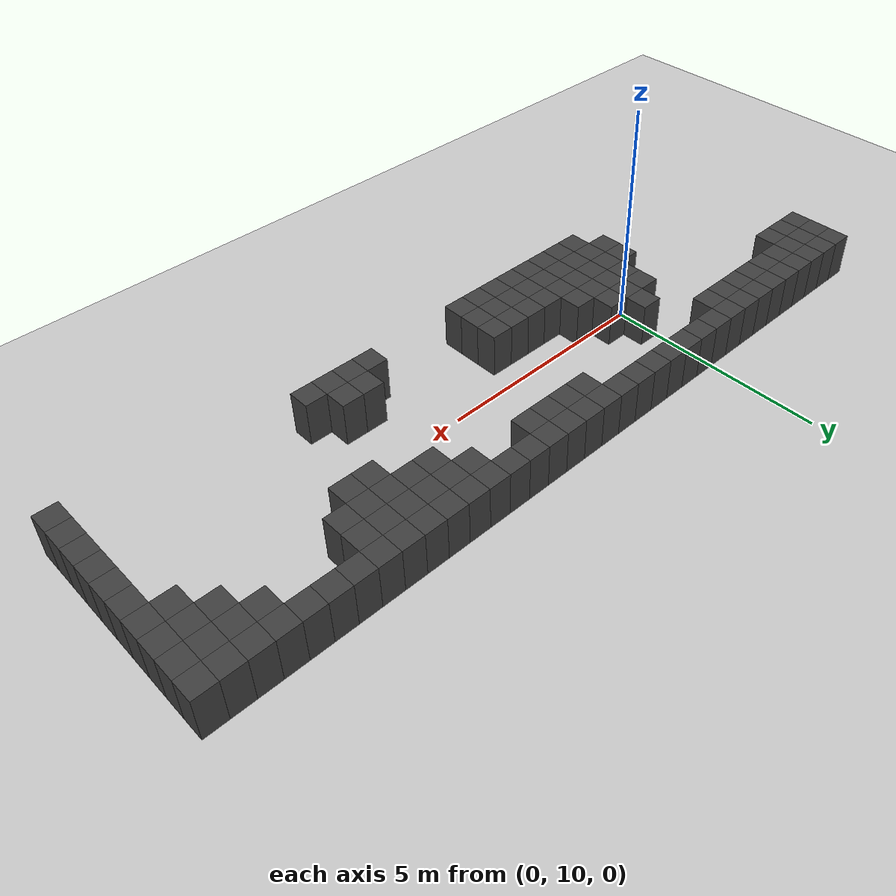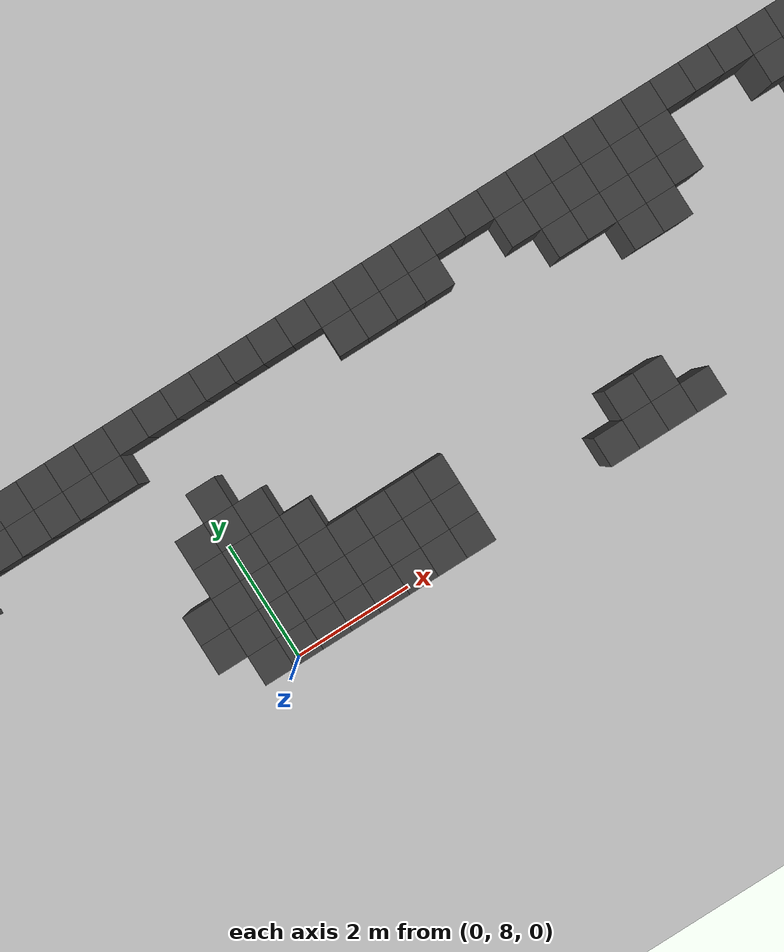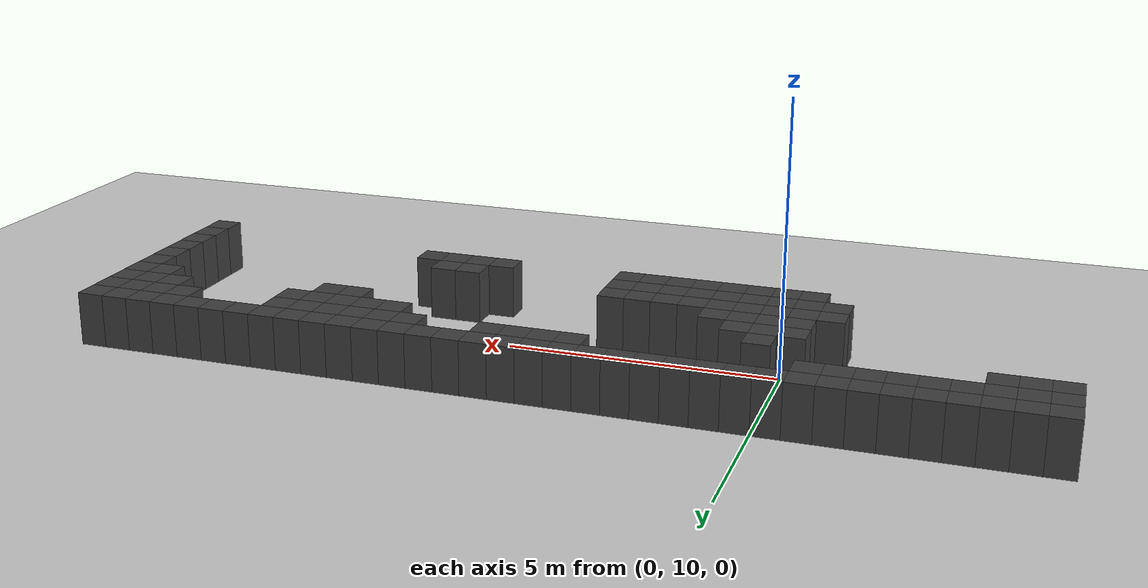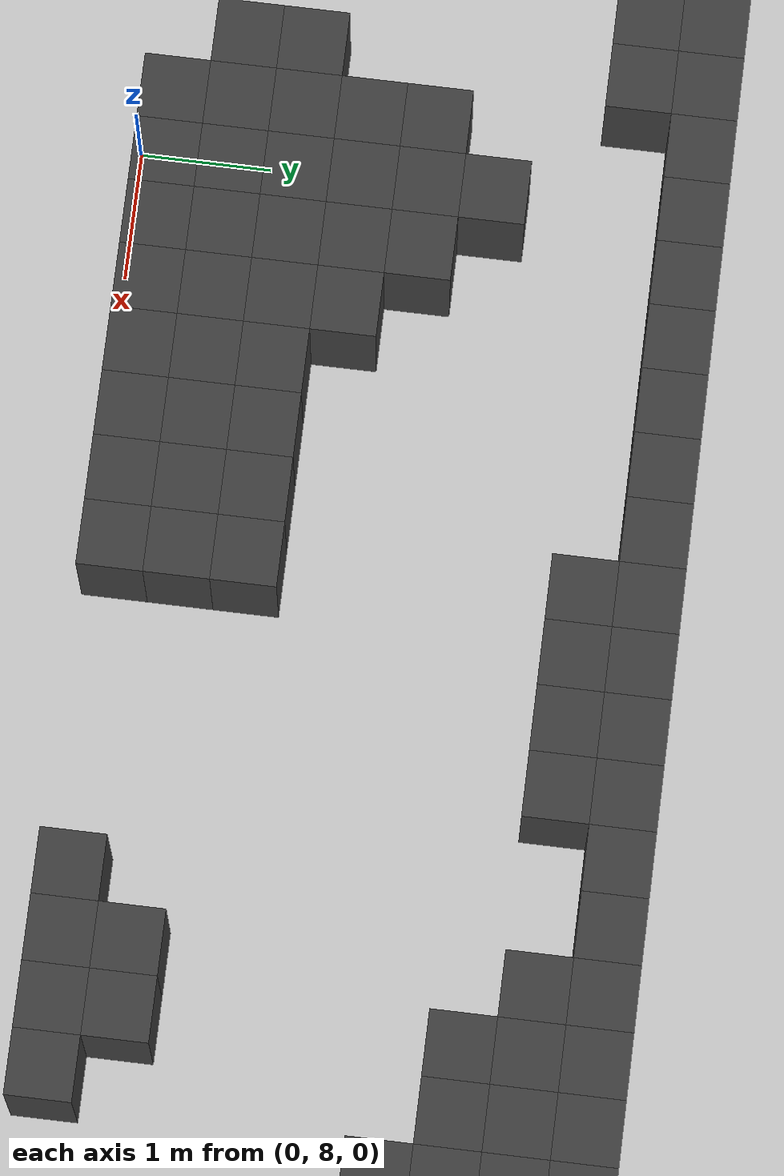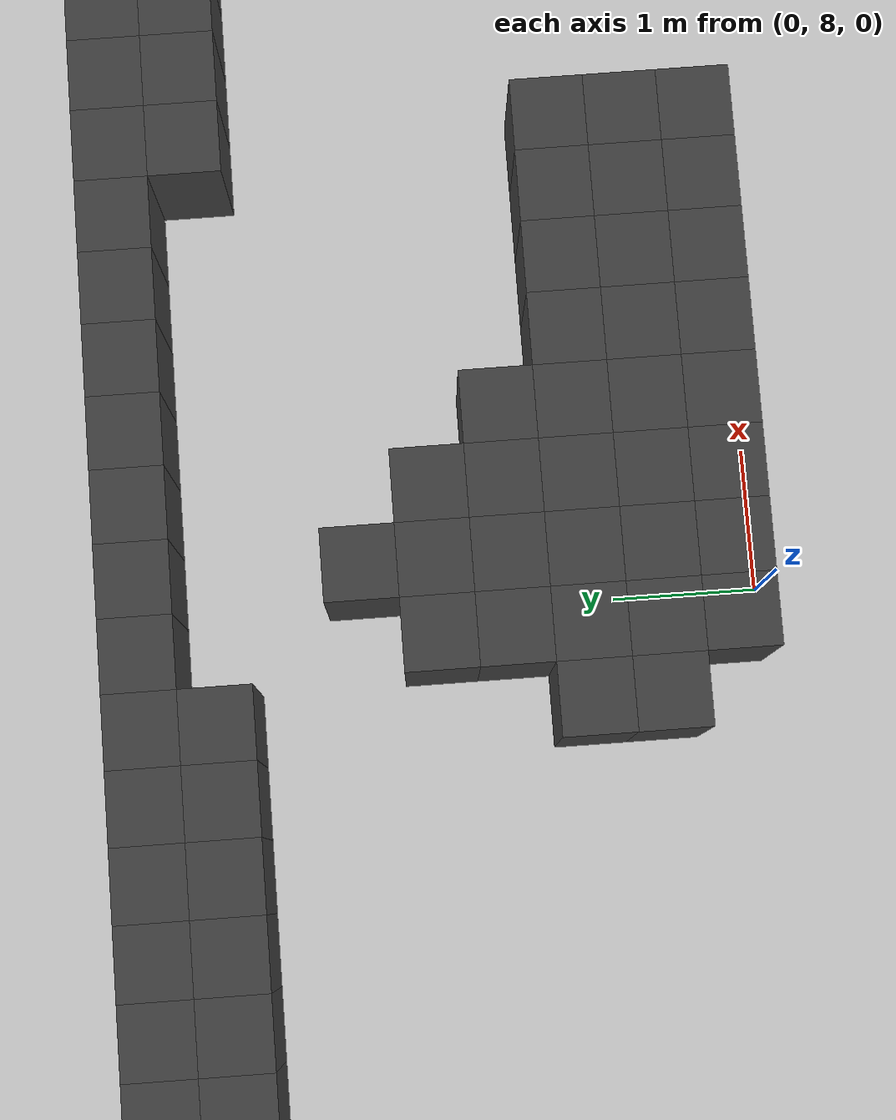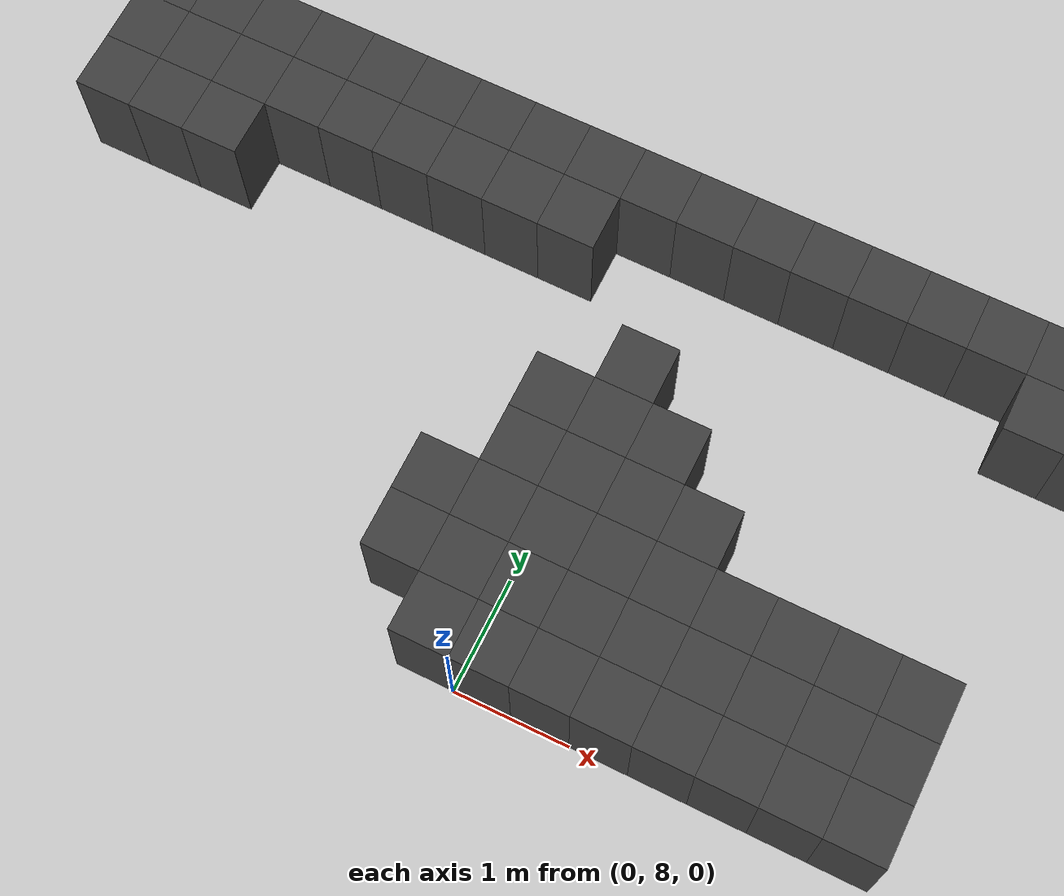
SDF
<sdf version="1.7">
 <world name="map_5837">
  <model name="ground_plane">
   <static>true</static>
   <link name="link">
    <collision name="collision">
     <geometry><plane><normal>0 0 1</normal><size>200 200</size></plane></geometry>
    </collision>
    <visual name="visual">
     <geometry><plane><normal>0 0 1</normal><size>200 200</size></plane></geometry>
     <material><ambient>0.8 0.8 0.8 1</ambient><diffuse>0.8 0.8 0.8 1</diffuse></material>
    </visual>
   </link>
  </model>
  <model name="maze_environment">
   <static>true</static>
   <link name="wall_15">
    <pose>-4.750 12.250 0.500 0 0 0</pose>
    <collision name="col"><geometry><box><size>0.5 0.5 1.0</size></box></geometry></collision>
    <visual name="vis">
     <geometry><box><size>0.5 0.5 1.0</size></box></geometry>
     <material><ambient>0.15 0.15 0.15 1</ambient><diffuse>0.25 0.25 0.25 1</diffuse></material>
    </visual>
   </link>
   <link name="wall_16">
    <pose>-4.250 12.250 0.500 0 0 0</pose>
    <collision name="col"><geometry><box><size>0.5 0.5 1.0</size></box></geometry></collision>
    <visual name="vis">
     <geometry><box><size>0.5 0.5 1.0</size></box></geometry>
     <material><ambient>0.15 0.15 0.15 1</ambient><diffuse>0.25 0.25 0.25 1</diffuse></material>
    </visual>
   </link>
   <link name="wall_17">
    <pose>-3.750 12.250 0.500 0 0 0</pose>
    <collision name="col"><geometry><box><size>0.5 0.5 1.0</size></box></geometry></collision>
    <visual name="vis">
     <geometry><box><size>0.5 0.5 1.0</size></box></geometry>
     <material><ambient>0.15 0.15 0.15 1</ambient><diffuse>0.25 0.25 0.25 1</diffuse></material>
    </visual>
   </link>
   <link name="wall_18">
    <pose>-3.250 12.250 0.500 0 0 0</pose>
    <collision name="col"><geometry><box><size>0.5 0.5 1.0</size></box></geometry></collision>
    <visual name="vis">
     <geometry><box><size>0.5 0.5 1.0</size></box></geometry>
     <material><ambient>0.15 0.15 0.15 1</ambient><diffuse>0.25 0.25 0.25 1</diffuse></material>
    </visual>
   </link>
   <link name="wall_19">
    <pose>-2.750 12.250 0.500 0 0 0</pose>
    <collision name="col"><geometry><box><size>0.5 0.5 1.0</size></box></geometry></collision>
    <visual name="vis">
     <geometry><box><size>0.5 0.5 1.0</size></box></geometry>
     <material><ambient>0.15 0.15 0.15 1</ambient><diffuse>0.25 0.25 0.25 1</diffuse></material>
    </visual>
   </link>
   <link name="wall_20">
    <pose>-2.250 12.250 0.500 0 0 0</pose>
    <collision name="col"><geometry><box><size>0.5 0.5 1.0</size></box></geometry></collision>
    <visual name="vis">
     <geometry><box><size>0.5 0.5 1.0</size></box></geometry>
     <material><ambient>0.15 0.15 0.15 1</ambient><diffuse>0.25 0.25 0.25 1</diffuse></material>
    </visual>
   </link>
   <link name="wall_21">
    <pose>-1.750 12.250 0.500 0 0 0</pose>
    <collision name="col"><geometry><box><size>0.5 0.5 1.0</size></box></geometry></collision>
    <visual name="vis">
     <geometry><box><size>0.5 0.5 1.0</size></box></geometry>
     <material><ambient>0.15 0.15 0.15 1</ambient><diffuse>0.25 0.25 0.25 1</diffuse></material>
    </visual>
   </link>
   <link name="wall_22">
    <pose>-1.250 12.250 0.500 0 0 0</pose>
    <collision name="col"><geometry><box><size>0.5 0.5 1.0</size></box></geometry></collision>
    <visual name="vis">
     <geometry><box><size>0.5 0.5 1.0</size></box></geometry>
     <material><ambient>0.15 0.15 0.15 1</ambient><diffuse>0.25 0.25 0.25 1</diffuse></material>
    </visual>
   </link>
   <link name="wall_23">
    <pose>-0.750 12.250 0.500 0 0 0</pose>
    <collision name="col"><geometry><box><size>0.5 0.5 1.0</size></box></geometry></collision>
    <visual name="vis">
     <geometry><box><size>0.5 0.5 1.0</size></box></geometry>
     <material><ambient>0.15 0.15 0.15 1</ambient><diffuse>0.25 0.25 0.25 1</diffuse></material>
    </visual>
   </link>
   <link name="wall_24">
    <pose>-0.250 12.250 0.500 0 0 0</pose>
    <collision name="col"><geometry><box><size>0.5 0.5 1.0</size></box></geometry></collision>
    <visual name="vis">
     <geometry><box><size>0.5 0.5 1.0</size></box></geometry>
     <material><ambient>0.15 0.15 0.15 1</ambient><diffuse>0.25 0.25 0.25 1</diffuse></material>
    </visual>
   </link>
   <link name="wall_25">
    <pose>0.250 12.250 0.500 0 0 0</pose>
    <collision name="col"><geometry><box><size>0.5 0.5 1.0</size></box></geometry></collision>
    <visual name="vis">
     <geometry><box><size>0.5 0.5 1.0</size></box></geometry>
     <material><ambient>0.15 0.15 0.15 1</ambient><diffuse>0.25 0.25 0.25 1</diffuse></material>
    </visual>
   </link>
   <link name="wall_26">
    <pose>0.750 12.250 0.500 0 0 0</pose>
    <collision name="col"><geometry><box><size>0.5 0.5 1.0</size></box></geometry></collision>
    <visual name="vis">
     <geometry><box><size>0.5 0.5 1.0</size></box></geometry>
     <material><ambient>0.15 0.15 0.15 1</ambient><diffuse>0.25 0.25 0.25 1</diffuse></material>
    </visual>
   </link>
   <link name="wall_27">
    <pose>1.250 12.250 0.500 0 0 0</pose>
    <collision name="col"><geometry><box><size>0.5 0.5 1.0</size></box></geometry></collision>
    <visual name="vis">
     <geometry><box><size>0.5 0.5 1.0</size></box></geometry>
     <material><ambient>0.15 0.15 0.15 1</ambient><diffuse>0.25 0.25 0.25 1</diffuse></material>
    </visual>
   </link>
   <link name="wall_28">
    <pose>1.750 12.250 0.500 0 0 0</pose>
    <collision name="col"><geometry><box><size>0.5 0.5 1.0</size></box></geometry></collision>
    <visual name="vis">
     <geometry><box><size>0.5 0.5 1.0</size></box></geometry>
     <material><ambient>0.15 0.15 0.15 1</ambient><diffuse>0.25 0.25 0.25 1</diffuse></material>
    </visual>
   </link>
   <link name="wall_29">
    <pose>2.250 12.250 0.500 0 0 0</pose>
    <collision name="col"><geometry><box><size>0.5 0.5 1.0</size></box></geometry></collision>
    <visual name="vis">
     <geometry><box><size>0.5 0.5 1.0</size></box></geometry>
     <material><ambient>0.15 0.15 0.15 1</ambient><diffuse>0.25 0.25 0.25 1</diffuse></material>
    </visual>
   </link>
   <link name="wall_30">
    <pose>2.750 12.250 0.500 0 0 0</pose>
    <collision name="col"><geometry><box><size>0.5 0.5 1.0</size></box></geometry></collision>
    <visual name="vis">
     <geometry><box><size>0.5 0.5 1.0</size></box></geometry>
     <material><ambient>0.15 0.15 0.15 1</ambient><diffuse>0.25 0.25 0.25 1</diffuse></material>
    </visual>
   </link>
   <link name="wall_31">
    <pose>3.250 12.250 0.500 0 0 0</pose>
    <collision name="col"><geometry><box><size>0.5 0.5 1.0</size></box></geometry></collision>
    <visual name="vis">
     <geometry><box><size>0.5 0.5 1.0</size></box></geometry>
     <material><ambient>0.15 0.15 0.15 1</ambient><diffuse>0.25 0.25 0.25 1</diffuse></material>
    </visual>
   </link>
   <link name="wall_32">
    <pose>3.750 12.250 0.500 0 0 0</pose>
    <collision name="col"><geometry><box><size>0.5 0.5 1.0</size></box></geometry></collision>
    <visual name="vis">
     <geometry><box><size>0.5 0.5 1.0</size></box></geometry>
     <material><ambient>0.15 0.15 0.15 1</ambient><diffuse>0.25 0.25 0.25 1</diffuse></material>
    </visual>
   </link>
   <link name="wall_33">
    <pose>4.250 12.250 0.500 0 0 0</pose>
    <collision name="col"><geometry><box><size>0.5 0.5 1.0</size></box></geometry></collision>
    <visual name="vis">
     <geometry><box><size>0.5 0.5 1.0</size></box></geometry>
     <material><ambient>0.15 0.15 0.15 1</ambient><diffuse>0.25 0.25 0.25 1</diffuse></material>
    </visual>
   </link>
   <link name="wall_34">
    <pose>4.750 12.250 0.500 0 0 0</pose>
    <collision name="col"><geometry><box><size>0.5 0.5 1.0</size></box></geometry></collision>
    <visual name="vis">
     <geometry><box><size>0.5 0.5 1.0</size></box></geometry>
     <material><ambient>0.15 0.15 0.15 1</ambient><diffuse>0.25 0.25 0.25 1</diffuse></material>
    </visual>
   </link>
   <link name="wall_35">
    <pose>5.250 12.250 0.500 0 0 0</pose>
    <collision name="col"><geometry><box><size>0.5 0.5 1.0</size></box></geometry></collision>
    <visual name="vis">
     <geometry><box><size>0.5 0.5 1.0</size></box></geometry>
     <material><ambient>0.15 0.15 0.15 1</ambient><diffuse>0.25 0.25 0.25 1</diffuse></material>
    </visual>
   </link>
   <link name="wall_36">
    <pose>5.750 12.250 0.500 0 0 0</pose>
    <collision name="col"><geometry><box><size>0.5 0.5 1.0</size></box></geometry></collision>
    <visual name="vis">
     <geometry><box><size>0.5 0.5 1.0</size></box></geometry>
     <material><ambient>0.15 0.15 0.15 1</ambient><diffuse>0.25 0.25 0.25 1</diffuse></material>
    </visual>
   </link>
   <link name="wall_37">
    <pose>6.250 12.250 0.500 0 0 0</pose>
    <collision name="col"><geometry><box><size>0.5 0.5 1.0</size></box></geometry></collision>
    <visual name="vis">
     <geometry><box><size>0.5 0.5 1.0</size></box></geometry>
     <material><ambient>0.15 0.15 0.15 1</ambient><diffuse>0.25 0.25 0.25 1</diffuse></material>
    </visual>
   </link>
   <link name="wall_38">
    <pose>6.750 12.250 0.500 0 0 0</pose>
    <collision name="col"><geometry><box><size>0.5 0.5 1.0</size></box></geometry></collision>
    <visual name="vis">
     <geometry><box><size>0.5 0.5 1.0</size></box></geometry>
     <material><ambient>0.15 0.15 0.15 1</ambient><diffuse>0.25 0.25 0.25 1</diffuse></material>
    </visual>
   </link>
   <link name="wall_39">
    <pose>7.250 12.250 0.500 0 0 0</pose>
    <collision name="col"><geometry><box><size>0.5 0.5 1.0</size></box></geometry></collision>
    <visual name="vis">
     <geometry><box><size>0.5 0.5 1.0</size></box></geometry>
     <material><ambient>0.15 0.15 0.15 1</ambient><diffuse>0.25 0.25 0.25 1</diffuse></material>
    </visual>
   </link>
   <link name="wall_40">
    <pose>7.750 12.250 0.500 0 0 0</pose>
    <collision name="col"><geometry><box><size>0.5 0.5 1.0</size></box></geometry></collision>
    <visual name="vis">
     <geometry><box><size>0.5 0.5 1.0</size></box></geometry>
     <material><ambient>0.15 0.15 0.15 1</ambient><diffuse>0.25 0.25 0.25 1</diffuse></material>
    </visual>
   </link>
   <link name="wall_41">
    <pose>8.250 12.250 0.500 0 0 0</pose>
    <collision name="col"><geometry><box><size>0.5 0.5 1.0</size></box></geometry></collision>
    <visual name="vis">
     <geometry><box><size>0.5 0.5 1.0</size></box></geometry>
     <material><ambient>0.15 0.15 0.15 1</ambient><diffuse>0.25 0.25 0.25 1</diffuse></material>
    </visual>
   </link>
   <link name="wall_42">
    <pose>8.750 12.250 0.500 0 0 0</pose>
    <collision name="col"><geometry><box><size>0.5 0.5 1.0</size></box></geometry></collision>
    <visual name="vis">
     <geometry><box><size>0.5 0.5 1.0</size></box></geometry>
     <material><ambient>0.15 0.15 0.15 1</ambient><diffuse>0.25 0.25 0.25 1</diffuse></material>
    </visual>
   </link>
   <link name="wall_43">
    <pose>9.250 12.250 0.500 0 0 0</pose>
    <collision name="col"><geometry><box><size>0.5 0.5 1.0</size></box></geometry></collision>
    <visual name="vis">
     <geometry><box><size>0.5 0.5 1.0</size></box></geometry>
     <material><ambient>0.15 0.15 0.15 1</ambient><diffuse>0.25 0.25 0.25 1</diffuse></material>
    </visual>
   </link>
   <link name="wall_44">
    <pose>9.750 12.250 0.500 0 0 0</pose>
    <collision name="col"><geometry><box><size>0.5 0.5 1.0</size></box></geometry></collision>
    <visual name="vis">
     <geometry><box><size>0.5 0.5 1.0</size></box></geometry>
     <material><ambient>0.15 0.15 0.15 1</ambient><diffuse>0.25 0.25 0.25 1</diffuse></material>
    </visual>
   </link>
   <link name="wall_45">
    <pose>10.250 12.250 0.500 0 0 0</pose>
    <collision name="col"><geometry><box><size>0.5 0.5 1.0</size></box></geometry></collision>
    <visual name="vis">
     <geometry><box><size>0.5 0.5 1.0</size></box></geometry>
     <material><ambient>0.15 0.15 0.15 1</ambient><diffuse>0.25 0.25 0.25 1</diffuse></material>
    </visual>
   </link>
   <link name="wall_46">
    <pose>10.750 12.250 0.500 0 0 0</pose>
    <collision name="col"><geometry><box><size>0.5 0.5 1.0</size></box></geometry></collision>
    <visual name="vis">
     <geometry><box><size>0.5 0.5 1.0</size></box></geometry>
     <material><ambient>0.15 0.15 0.15 1</ambient><diffuse>0.25 0.25 0.25 1</diffuse></material>
    </visual>
   </link>
   <link name="wall_47">
    <pose>11.250 12.250 0.500 0 0 0</pose>
    <collision name="col"><geometry><box><size>0.5 0.5 1.0</size></box></geometry></collision>
    <visual name="vis">
     <geometry><box><size>0.5 0.5 1.0</size></box></geometry>
     <material><ambient>0.15 0.15 0.15 1</ambient><diffuse>0.25 0.25 0.25 1</diffuse></material>
    </visual>
   </link>
   <link name="wall_48">
    <pose>11.750 12.250 0.500 0 0 0</pose>
    <collision name="col"><geometry><box><size>0.5 0.5 1.0</size></box></geometry></collision>
    <visual name="vis">
     <geometry><box><size>0.5 0.5 1.0</size></box></geometry>
     <material><ambient>0.15 0.15 0.15 1</ambient><diffuse>0.25 0.25 0.25 1</diffuse></material>
    </visual>
   </link>
   <link name="wall_49">
    <pose>12.250 12.250 0.500 0 0 0</pose>
    <collision name="col"><geometry><box><size>0.5 0.5 1.0</size></box></geometry></collision>
    <visual name="vis">
     <geometry><box><size>0.5 0.5 1.0</size></box></geometry>
     <material><ambient>0.15 0.15 0.15 1</ambient><diffuse>0.25 0.25 0.25 1</diffuse></material>
    </visual>
   </link>
   <link name="wall_53">
    <pose>-4.750 11.750 0.500 0 0 0</pose>
    <collision name="col"><geometry><box><size>0.5 0.5 1.0</size></box></geometry></collision>
    <visual name="vis">
     <geometry><box><size>0.5 0.5 1.0</size></box></geometry>
     <material><ambient>0.15 0.15 0.15 1</ambient><diffuse>0.25 0.25 0.25 1</diffuse></material>
    </visual>
   </link>
   <link name="wall_54">
    <pose>-4.250 11.750 0.500 0 0 0</pose>
    <collision name="col"><geometry><box><size>0.5 0.5 1.0</size></box></geometry></collision>
    <visual name="vis">
     <geometry><box><size>0.5 0.5 1.0</size></box></geometry>
     <material><ambient>0.15 0.15 0.15 1</ambient><diffuse>0.25 0.25 0.25 1</diffuse></material>
    </visual>
   </link>
   <link name="wall_55">
    <pose>-3.750 11.750 0.500 0 0 0</pose>
    <collision name="col"><geometry><box><size>0.5 0.5 1.0</size></box></geometry></collision>
    <visual name="vis">
     <geometry><box><size>0.5 0.5 1.0</size></box></geometry>
     <material><ambient>0.15 0.15 0.15 1</ambient><diffuse>0.25 0.25 0.25 1</diffuse></material>
    </visual>
   </link>
   <link name="wall_56">
    <pose>-3.250 11.750 0.500 0 0 0</pose>
    <collision name="col"><geometry><box><size>0.5 0.5 1.0</size></box></geometry></collision>
    <visual name="vis">
     <geometry><box><size>0.5 0.5 1.0</size></box></geometry>
     <material><ambient>0.15 0.15 0.15 1</ambient><diffuse>0.25 0.25 0.25 1</diffuse></material>
    </visual>
   </link>
   <link name="wall_57">
    <pose>-2.750 11.750 0.500 0 0 0</pose>
    <collision name="col"><geometry><box><size>0.5 0.5 1.0</size></box></geometry></collision>
    <visual name="vis">
     <geometry><box><size>0.5 0.5 1.0</size></box></geometry>
     <material><ambient>0.15 0.15 0.15 1</ambient><diffuse>0.25 0.25 0.25 1</diffuse></material>
    </visual>
   </link>
   <link name="wall_58">
    <pose>-2.250 11.750 0.500 0 0 0</pose>
    <collision name="col"><geometry><box><size>0.5 0.5 1.0</size></box></geometry></collision>
    <visual name="vis">
     <geometry><box><size>0.5 0.5 1.0</size></box></geometry>
     <material><ambient>0.15 0.15 0.15 1</ambient><diffuse>0.25 0.25 0.25 1</diffuse></material>
    </visual>
   </link>
   <link name="wall_59">
    <pose>-1.750 11.750 0.500 0 0 0</pose>
    <collision name="col"><geometry><box><size>0.5 0.5 1.0</size></box></geometry></collision>
    <visual name="vis">
     <geometry><box><size>0.5 0.5 1.0</size></box></geometry>
     <material><ambient>0.15 0.15 0.15 1</ambient><diffuse>0.25 0.25 0.25 1</diffuse></material>
    </visual>
   </link>
   <link name="wall_60">
    <pose>-1.250 11.750 0.500 0 0 0</pose>
    <collision name="col"><geometry><box><size>0.5 0.5 1.0</size></box></geometry></collision>
    <visual name="vis">
     <geometry><box><size>0.5 0.5 1.0</size></box></geometry>
     <material><ambient>0.15 0.15 0.15 1</ambient><diffuse>0.25 0.25 0.25 1</diffuse></material>
    </visual>
   </link>
   <link name="wall_61">
    <pose>-0.750 11.750 0.500 0 0 0</pose>
    <collision name="col"><geometry><box><size>0.5 0.5 1.0</size></box></geometry></collision>
    <visual name="vis">
     <geometry><box><size>0.5 0.5 1.0</size></box></geometry>
     <material><ambient>0.15 0.15 0.15 1</ambient><diffuse>0.25 0.25 0.25 1</diffuse></material>
    </visual>
   </link>
   <link name="wall_62">
    <pose>3.250 11.750 0.500 0 0 0</pose>
    <collision name="col"><geometry><box><size>0.5 0.5 1.0</size></box></geometry></collision>
    <visual name="vis">
     <geometry><box><size>0.5 0.5 1.0</size></box></geometry>
     <material><ambient>0.15 0.15 0.15 1</ambient><diffuse>0.25 0.25 0.25 1</diffuse></material>
    </visual>
   </link>
   <link name="wall_63">
    <pose>3.750 11.750 0.500 0 0 0</pose>
    <collision name="col"><geometry><box><size>0.5 0.5 1.0</size></box></geometry></collision>
    <visual name="vis">
     <geometry><box><size>0.5 0.5 1.0</size></box></geometry>
     <material><ambient>0.15 0.15 0.15 1</ambient><diffuse>0.25 0.25 0.25 1</diffuse></material>
    </visual>
   </link>
   <link name="wall_64">
    <pose>4.250 11.750 0.500 0 0 0</pose>
    <collision name="col"><geometry><box><size>0.5 0.5 1.0</size></box></geometry></collision>
    <visual name="vis">
     <geometry><box><size>0.5 0.5 1.0</size></box></geometry>
     <material><ambient>0.15 0.15 0.15 1</ambient><diffuse>0.25 0.25 0.25 1</diffuse></material>
    </visual>
   </link>
   <link name="wall_65">
    <pose>4.750 11.750 0.500 0 0 0</pose>
    <collision name="col"><geometry><box><size>0.5 0.5 1.0</size></box></geometry></collision>
    <visual name="vis">
     <geometry><box><size>0.5 0.5 1.0</size></box></geometry>
     <material><ambient>0.15 0.15 0.15 1</ambient><diffuse>0.25 0.25 0.25 1</diffuse></material>
    </visual>
   </link>
   <link name="wall_66">
    <pose>6.250 11.750 0.500 0 0 0</pose>
    <collision name="col"><geometry><box><size>0.5 0.5 1.0</size></box></geometry></collision>
    <visual name="vis">
     <geometry><box><size>0.5 0.5 1.0</size></box></geometry>
     <material><ambient>0.15 0.15 0.15 1</ambient><diffuse>0.25 0.25 0.25 1</diffuse></material>
    </visual>
   </link>
   <link name="wall_67">
    <pose>6.750 11.750 0.500 0 0 0</pose>
    <collision name="col"><geometry><box><size>0.5 0.5 1.0</size></box></geometry></collision>
    <visual name="vis">
     <geometry><box><size>0.5 0.5 1.0</size></box></geometry>
     <material><ambient>0.15 0.15 0.15 1</ambient><diffuse>0.25 0.25 0.25 1</diffuse></material>
    </visual>
   </link>
   <link name="wall_68">
    <pose>7.250 11.750 0.500 0 0 0</pose>
    <collision name="col"><geometry><box><size>0.5 0.5 1.0</size></box></geometry></collision>
    <visual name="vis">
     <geometry><box><size>0.5 0.5 1.0</size></box></geometry>
     <material><ambient>0.15 0.15 0.15 1</ambient><diffuse>0.25 0.25 0.25 1</diffuse></material>
    </visual>
   </link>
   <link name="wall_69">
    <pose>7.750 11.750 0.500 0 0 0</pose>
    <collision name="col"><geometry><box><size>0.5 0.5 1.0</size></box></geometry></collision>
    <visual name="vis">
     <geometry><box><size>0.5 0.5 1.0</size></box></geometry>
     <material><ambient>0.15 0.15 0.15 1</ambient><diffuse>0.25 0.25 0.25 1</diffuse></material>
    </visual>
   </link>
   <link name="wall_70">
    <pose>8.250 11.750 0.500 0 0 0</pose>
    <collision name="col"><geometry><box><size>0.5 0.5 1.0</size></box></geometry></collision>
    <visual name="vis">
     <geometry><box><size>0.5 0.5 1.0</size></box></geometry>
     <material><ambient>0.15 0.15 0.15 1</ambient><diffuse>0.25 0.25 0.25 1</diffuse></material>
    </visual>
   </link>
   <link name="wall_71">
    <pose>8.750 11.750 0.500 0 0 0</pose>
    <collision name="col"><geometry><box><size>0.5 0.5 1.0</size></box></geometry></collision>
    <visual name="vis">
     <geometry><box><size>0.5 0.5 1.0</size></box></geometry>
     <material><ambient>0.15 0.15 0.15 1</ambient><diffuse>0.25 0.25 0.25 1</diffuse></material>
    </visual>
   </link>
   <link name="wall_72">
    <pose>10.750 11.750 0.500 0 0 0</pose>
    <collision name="col"><geometry><box><size>0.5 0.5 1.0</size></box></geometry></collision>
    <visual name="vis">
     <geometry><box><size>0.5 0.5 1.0</size></box></geometry>
     <material><ambient>0.15 0.15 0.15 1</ambient><diffuse>0.25 0.25 0.25 1</diffuse></material>
    </visual>
   </link>
   <link name="wall_73">
    <pose>11.250 11.750 0.500 0 0 0</pose>
    <collision name="col"><geometry><box><size>0.5 0.5 1.0</size></box></geometry></collision>
    <visual name="vis">
     <geometry><box><size>0.5 0.5 1.0</size></box></geometry>
     <material><ambient>0.15 0.15 0.15 1</ambient><diffuse>0.25 0.25 0.25 1</diffuse></material>
    </visual>
   </link>
   <link name="wall_74">
    <pose>11.750 11.750 0.500 0 0 0</pose>
    <collision name="col"><geometry><box><size>0.5 0.5 1.0</size></box></geometry></collision>
    <visual name="vis">
     <geometry><box><size>0.5 0.5 1.0</size></box></geometry>
     <material><ambient>0.15 0.15 0.15 1</ambient><diffuse>0.25 0.25 0.25 1</diffuse></material>
    </visual>
   </link>
   <link name="wall_75">
    <pose>12.250 11.750 0.500 0 0 0</pose>
    <collision name="col"><geometry><box><size>0.5 0.5 1.0</size></box></geometry></collision>
    <visual name="vis">
     <geometry><box><size>0.5 0.5 1.0</size></box></geometry>
     <material><ambient>0.15 0.15 0.15 1</ambient><diffuse>0.25 0.25 0.25 1</diffuse></material>
    </visual>
   </link>
   <link name="wall_80">
    <pose>-4.750 11.250 0.500 0 0 0</pose>
    <collision name="col"><geometry><box><size>0.5 0.5 1.0</size></box></geometry></collision>
    <visual name="vis">
     <geometry><box><size>0.5 0.5 1.0</size></box></geometry>
     <material><ambient>0.15 0.15 0.15 1</ambient><diffuse>0.25 0.25 0.25 1</diffuse></material>
    </visual>
   </link>
   <link name="wall_81">
    <pose>-4.250 11.250 0.500 0 0 0</pose>
    <collision name="col"><geometry><box><size>0.5 0.5 1.0</size></box></geometry></collision>
    <visual name="vis">
     <geometry><box><size>0.5 0.5 1.0</size></box></geometry>
     <material><ambient>0.15 0.15 0.15 1</ambient><diffuse>0.25 0.25 0.25 1</diffuse></material>
    </visual>
   </link>
   <link name="wall_82">
    <pose>-3.750 11.250 0.500 0 0 0</pose>
    <collision name="col"><geometry><box><size>0.5 0.5 1.0</size></box></geometry></collision>
    <visual name="vis">
     <geometry><box><size>0.5 0.5 1.0</size></box></geometry>
     <material><ambient>0.15 0.15 0.15 1</ambient><diffuse>0.25 0.25 0.25 1</diffuse></material>
    </visual>
   </link>
   <link name="wall_83">
    <pose>6.750 11.250 0.500 0 0 0</pose>
    <collision name="col"><geometry><box><size>0.5 0.5 1.0</size></box></geometry></collision>
    <visual name="vis">
     <geometry><box><size>0.5 0.5 1.0</size></box></geometry>
     <material><ambient>0.15 0.15 0.15 1</ambient><diffuse>0.25 0.25 0.25 1</diffuse></material>
    </visual>
   </link>
   <link name="wall_84">
    <pose>7.250 11.250 0.500 0 0 0</pose>
    <collision name="col"><geometry><box><size>0.5 0.5 1.0</size></box></geometry></collision>
    <visual name="vis">
     <geometry><box><size>0.5 0.5 1.0</size></box></geometry>
     <material><ambient>0.15 0.15 0.15 1</ambient><diffuse>0.25 0.25 0.25 1</diffuse></material>
    </visual>
   </link>
   <link name="wall_85">
    <pose>7.750 11.250 0.500 0 0 0</pose>
    <collision name="col"><geometry><box><size>0.5 0.5 1.0</size></box></geometry></collision>
    <visual name="vis">
     <geometry><box><size>0.5 0.5 1.0</size></box></geometry>
     <material><ambient>0.15 0.15 0.15 1</ambient><diffuse>0.25 0.25 0.25 1</diffuse></material>
    </visual>
   </link>
   <link name="wall_86">
    <pose>8.250 11.250 0.500 0 0 0</pose>
    <collision name="col"><geometry><box><size>0.5 0.5 1.0</size></box></geometry></collision>
    <visual name="vis">
     <geometry><box><size>0.5 0.5 1.0</size></box></geometry>
     <material><ambient>0.15 0.15 0.15 1</ambient><diffuse>0.25 0.25 0.25 1</diffuse></material>
    </visual>
   </link>
   <link name="wall_87">
    <pose>8.750 11.250 0.500 0 0 0</pose>
    <collision name="col"><geometry><box><size>0.5 0.5 1.0</size></box></geometry></collision>
    <visual name="vis">
     <geometry><box><size>0.5 0.5 1.0</size></box></geometry>
     <material><ambient>0.15 0.15 0.15 1</ambient><diffuse>0.25 0.25 0.25 1</diffuse></material>
    </visual>
   </link>
   <link name="wall_88">
    <pose>11.250 11.250 0.500 0 0 0</pose>
    <collision name="col"><geometry><box><size>0.5 0.5 1.0</size></box></geometry></collision>
    <visual name="vis">
     <geometry><box><size>0.5 0.5 1.0</size></box></geometry>
     <material><ambient>0.15 0.15 0.15 1</ambient><diffuse>0.25 0.25 0.25 1</diffuse></material>
    </visual>
   </link>
   <link name="wall_89">
    <pose>11.750 11.250 0.500 0 0 0</pose>
    <collision name="col"><geometry><box><size>0.5 0.5 1.0</size></box></geometry></collision>
    <visual name="vis">
     <geometry><box><size>0.5 0.5 1.0</size></box></geometry>
     <material><ambient>0.15 0.15 0.15 1</ambient><diffuse>0.25 0.25 0.25 1</diffuse></material>
    </visual>
   </link>
   <link name="wall_90">
    <pose>12.250 11.250 0.500 0 0 0</pose>
    <collision name="col"><geometry><box><size>0.5 0.5 1.0</size></box></geometry></collision>
    <visual name="vis">
     <geometry><box><size>0.5 0.5 1.0</size></box></geometry>
     <material><ambient>0.15 0.15 0.15 1</ambient><diffuse>0.25 0.25 0.25 1</diffuse></material>
    </visual>
   </link>
   <link name="wall_97">
    <pose>0.250 10.750 0.500 0 0 0</pose>
    <collision name="col"><geometry><box><size>0.5 0.5 1.0</size></box></geometry></collision>
    <visual name="vis">
     <geometry><box><size>0.5 0.5 1.0</size></box></geometry>
     <material><ambient>0.15 0.15 0.15 1</ambient><diffuse>0.25 0.25 0.25 1</diffuse></material>
    </visual>
   </link>
   <link name="wall_98">
    <pose>7.750 10.750 0.500 0 0 0</pose>
    <collision name="col"><geometry><box><size>0.5 0.5 1.0</size></box></geometry></collision>
    <visual name="vis">
     <geometry><box><size>0.5 0.5 1.0</size></box></geometry>
     <material><ambient>0.15 0.15 0.15 1</ambient><diffuse>0.25 0.25 0.25 1</diffuse></material>
    </visual>
   </link>
   <link name="wall_99">
    <pose>8.250 10.750 0.500 0 0 0</pose>
    <collision name="col"><geometry><box><size>0.5 0.5 1.0</size></box></geometry></collision>
    <visual name="vis">
     <geometry><box><size>0.5 0.5 1.0</size></box></geometry>
     <material><ambient>0.15 0.15 0.15 1</ambient><diffuse>0.25 0.25 0.25 1</diffuse></material>
    </visual>
   </link>
   <link name="wall_100">
    <pose>11.750 10.750 0.500 0 0 0</pose>
    <collision name="col"><geometry><box><size>0.5 0.5 1.0</size></box></geometry></collision>
    <visual name="vis">
     <geometry><box><size>0.5 0.5 1.0</size></box></geometry>
     <material><ambient>0.15 0.15 0.15 1</ambient><diffuse>0.25 0.25 0.25 1</diffuse></material>
    </visual>
   </link>
   <link name="wall_101">
    <pose>12.250 10.750 0.500 0 0 0</pose>
    <collision name="col"><geometry><box><size>0.5 0.5 1.0</size></box></geometry></collision>
    <visual name="vis">
     <geometry><box><size>0.5 0.5 1.0</size></box></geometry>
     <material><ambient>0.15 0.15 0.15 1</ambient><diffuse>0.25 0.25 0.25 1</diffuse></material>
    </visual>
   </link>
   <link name="wall_109">
    <pose>-0.250 10.250 0.500 0 0 0</pose>
    <collision name="col"><geometry><box><size>0.5 0.5 1.0</size></box></geometry></collision>
    <visual name="vis">
     <geometry><box><size>0.5 0.5 1.0</size></box></geometry>
     <material><ambient>0.15 0.15 0.15 1</ambient><diffuse>0.25 0.25 0.25 1</diffuse></material>
    </visual>
   </link>
   <link name="wall_110">
    <pose>0.250 10.250 0.500 0 0 0</pose>
    <collision name="col"><geometry><box><size>0.5 0.5 1.0</size></box></geometry></collision>
    <visual name="vis">
     <geometry><box><size>0.5 0.5 1.0</size></box></geometry>
     <material><ambient>0.15 0.15 0.15 1</ambient><diffuse>0.25 0.25 0.25 1</diffuse></material>
    </visual>
   </link>
   <link name="wall_111">
    <pose>0.750 10.250 0.500 0 0 0</pose>
    <collision name="col"><geometry><box><size>0.5 0.5 1.0</size></box></geometry></collision>
    <visual name="vis">
     <geometry><box><size>0.5 0.5 1.0</size></box></geometry>
     <material><ambient>0.15 0.15 0.15 1</ambient><diffuse>0.25 0.25 0.25 1</diffuse></material>
    </visual>
   </link>
   <link name="wall_112">
    <pose>12.250 10.250 0.500 0 0 0</pose>
    <collision name="col"><geometry><box><size>0.5 0.5 1.0</size></box></geometry></collision>
    <visual name="vis">
     <geometry><box><size>0.5 0.5 1.0</size></box></geometry>
     <material><ambient>0.15 0.15 0.15 1</ambient><diffuse>0.25 0.25 0.25 1</diffuse></material>
    </visual>
   </link>
   <link name="wall_119">
    <pose>-0.250 9.750 0.500 0 0 0</pose>
    <collision name="col"><geometry><box><size>0.5 0.5 1.0</size></box></geometry></collision>
    <visual name="vis">
     <geometry><box><size>0.5 0.5 1.0</size></box></geometry>
     <material><ambient>0.15 0.15 0.15 1</ambient><diffuse>0.25 0.25 0.25 1</diffuse></material>
    </visual>
   </link>
   <link name="wall_120">
    <pose>0.250 9.750 0.500 0 0 0</pose>
    <collision name="col"><geometry><box><size>0.5 0.5 1.0</size></box></geometry></collision>
    <visual name="vis">
     <geometry><box><size>0.5 0.5 1.0</size></box></geometry>
     <material><ambient>0.15 0.15 0.15 1</ambient><diffuse>0.25 0.25 0.25 1</diffuse></material>
    </visual>
   </link>
   <link name="wall_121">
    <pose>0.750 9.750 0.500 0 0 0</pose>
    <collision name="col"><geometry><box><size>0.5 0.5 1.0</size></box></geometry></collision>
    <visual name="vis">
     <geometry><box><size>0.5 0.5 1.0</size></box></geometry>
     <material><ambient>0.15 0.15 0.15 1</ambient><diffuse>0.25 0.25 0.25 1</diffuse></material>
    </visual>
   </link>
   <link name="wall_122">
    <pose>1.250 9.750 0.500 0 0 0</pose>
    <collision name="col"><geometry><box><size>0.5 0.5 1.0</size></box></geometry></collision>
    <visual name="vis">
     <geometry><box><size>0.5 0.5 1.0</size></box></geometry>
     <material><ambient>0.15 0.15 0.15 1</ambient><diffuse>0.25 0.25 0.25 1</diffuse></material>
    </visual>
   </link>
   <link name="wall_123">
    <pose>12.250 9.750 0.500 0 0 0</pose>
    <collision name="col"><geometry><box><size>0.5 0.5 1.0</size></box></geometry></collision>
    <visual name="vis">
     <geometry><box><size>0.5 0.5 1.0</size></box></geometry>
     <material><ambient>0.15 0.15 0.15 1</ambient><diffuse>0.25 0.25 0.25 1</diffuse></material>
    </visual>
   </link>
   <link name="wall_128">
    <pose>-0.750 9.250 0.500 0 0 0</pose>
    <collision name="col"><geometry><box><size>0.5 0.5 1.0</size></box></geometry></collision>
    <visual name="vis">
     <geometry><box><size>0.5 0.5 1.0</size></box></geometry>
     <material><ambient>0.15 0.15 0.15 1</ambient><diffuse>0.25 0.25 0.25 1</diffuse></material>
    </visual>
   </link>
   <link name="wall_129">
    <pose>-0.250 9.250 0.500 0 0 0</pose>
    <collision name="col"><geometry><box><size>0.5 0.5 1.0</size></box></geometry></collision>
    <visual name="vis">
     <geometry><box><size>0.5 0.5 1.0</size></box></geometry>
     <material><ambient>0.15 0.15 0.15 1</ambient><diffuse>0.25 0.25 0.25 1</diffuse></material>
    </visual>
   </link>
   <link name="wall_130">
    <pose>0.250 9.250 0.500 0 0 0</pose>
    <collision name="col"><geometry><box><size>0.5 0.5 1.0</size></box></geometry></collision>
    <visual name="vis">
     <geometry><box><size>0.5 0.5 1.0</size></box></geometry>
     <material><ambient>0.15 0.15 0.15 1</ambient><diffuse>0.25 0.25 0.25 1</diffuse></material>
    </visual>
   </link>
   <link name="wall_131">
    <pose>0.750 9.250 0.500 0 0 0</pose>
    <collision name="col"><geometry><box><size>0.5 0.5 1.0</size></box></geometry></collision>
    <visual name="vis">
     <geometry><box><size>0.5 0.5 1.0</size></box></geometry>
     <material><ambient>0.15 0.15 0.15 1</ambient><diffuse>0.25 0.25 0.25 1</diffuse></material>
    </visual>
   </link>
   <link name="wall_132">
    <pose>1.250 9.250 0.500 0 0 0</pose>
    <collision name="col"><geometry><box><size>0.5 0.5 1.0</size></box></geometry></collision>
    <visual name="vis">
     <geometry><box><size>0.5 0.5 1.0</size></box></geometry>
     <material><ambient>0.15 0.15 0.15 1</ambient><diffuse>0.25 0.25 0.25 1</diffuse></material>
    </visual>
   </link>
   <link name="wall_133">
    <pose>1.750 9.250 0.500 0 0 0</pose>
    <collision name="col"><geometry><box><size>0.5 0.5 1.0</size></box></geometry></collision>
    <visual name="vis">
     <geometry><box><size>0.5 0.5 1.0</size></box></geometry>
     <material><ambient>0.15 0.15 0.15 1</ambient><diffuse>0.25 0.25 0.25 1</diffuse></material>
    </visual>
   </link>
   <link name="wall_134">
    <pose>2.250 9.250 0.500 0 0 0</pose>
    <collision name="col"><geometry><box><size>0.5 0.5 1.0</size></box></geometry></collision>
    <visual name="vis">
     <geometry><box><size>0.5 0.5 1.0</size></box></geometry>
     <material><ambient>0.15 0.15 0.15 1</ambient><diffuse>0.25 0.25 0.25 1</diffuse></material>
    </visual>
   </link>
   <link name="wall_135">
    <pose>2.750 9.250 0.500 0 0 0</pose>
    <collision name="col"><geometry><box><size>0.5 0.5 1.0</size></box></geometry></collision>
    <visual name="vis">
     <geometry><box><size>0.5 0.5 1.0</size></box></geometry>
     <material><ambient>0.15 0.15 0.15 1</ambient><diffuse>0.25 0.25 0.25 1</diffuse></material>
    </visual>
   </link>
   <link name="wall_136">
    <pose>3.250 9.250 0.500 0 0 0</pose>
    <collision name="col"><geometry><box><size>0.5 0.5 1.0</size></box></geometry></collision>
    <visual name="vis">
     <geometry><box><size>0.5 0.5 1.0</size></box></geometry>
     <material><ambient>0.15 0.15 0.15 1</ambient><diffuse>0.25 0.25 0.25 1</diffuse></material>
    </visual>
   </link>
   <link name="wall_137">
    <pose>12.250 9.250 0.500 0 0 0</pose>
    <collision name="col"><geometry><box><size>0.5 0.5 1.0</size></box></geometry></collision>
    <visual name="vis">
     <geometry><box><size>0.5 0.5 1.0</size></box></geometry>
     <material><ambient>0.15 0.15 0.15 1</ambient><diffuse>0.25 0.25 0.25 1</diffuse></material>
    </visual>
   </link>
   <link name="wall_141">
    <pose>-0.750 8.750 0.500 0 0 0</pose>
    <collision name="col"><geometry><box><size>0.5 0.5 1.0</size></box></geometry></collision>
    <visual name="vis">
     <geometry><box><size>0.5 0.5 1.0</size></box></geometry>
     <material><ambient>0.15 0.15 0.15 1</ambient><diffuse>0.25 0.25 0.25 1</diffuse></material>
    </visual>
   </link>
   <link name="wall_142">
    <pose>-0.250 8.750 0.500 0 0 0</pose>
    <collision name="col"><geometry><box><size>0.5 0.5 1.0</size></box></geometry></collision>
    <visual name="vis">
     <geometry><box><size>0.5 0.5 1.0</size></box></geometry>
     <material><ambient>0.15 0.15 0.15 1</ambient><diffuse>0.25 0.25 0.25 1</diffuse></material>
    </visual>
   </link>
   <link name="wall_143">
    <pose>0.250 8.750 0.500 0 0 0</pose>
    <collision name="col"><geometry><box><size>0.5 0.5 1.0</size></box></geometry></collision>
    <visual name="vis">
     <geometry><box><size>0.5 0.5 1.0</size></box></geometry>
     <material><ambient>0.15 0.15 0.15 1</ambient><diffuse>0.25 0.25 0.25 1</diffuse></material>
    </visual>
   </link>
   <link name="wall_144">
    <pose>0.750 8.750 0.500 0 0 0</pose>
    <collision name="col"><geometry><box><size>0.5 0.5 1.0</size></box></geometry></collision>
    <visual name="vis">
     <geometry><box><size>0.5 0.5 1.0</size></box></geometry>
     <material><ambient>0.15 0.15 0.15 1</ambient><diffuse>0.25 0.25 0.25 1</diffuse></material>
    </visual>
   </link>
   <link name="wall_145">
    <pose>1.250 8.750 0.500 0 0 0</pose>
    <collision name="col"><geometry><box><size>0.5 0.5 1.0</size></box></geometry></collision>
    <visual name="vis">
     <geometry><box><size>0.5 0.5 1.0</size></box></geometry>
     <material><ambient>0.15 0.15 0.15 1</ambient><diffuse>0.25 0.25 0.25 1</diffuse></material>
    </visual>
   </link>
   <link name="wall_146">
    <pose>1.750 8.750 0.500 0 0 0</pose>
    <collision name="col"><geometry><box><size>0.5 0.5 1.0</size></box></geometry></collision>
    <visual name="vis">
     <geometry><box><size>0.5 0.5 1.0</size></box></geometry>
     <material><ambient>0.15 0.15 0.15 1</ambient><diffuse>0.25 0.25 0.25 1</diffuse></material>
    </visual>
   </link>
   <link name="wall_147">
    <pose>2.250 8.750 0.500 0 0 0</pose>
    <collision name="col"><geometry><box><size>0.5 0.5 1.0</size></box></geometry></collision>
    <visual name="vis">
     <geometry><box><size>0.5 0.5 1.0</size></box></geometry>
     <material><ambient>0.15 0.15 0.15 1</ambient><diffuse>0.25 0.25 0.25 1</diffuse></material>
    </visual>
   </link>
   <link name="wall_148">
    <pose>2.750 8.750 0.500 0 0 0</pose>
    <collision name="col"><geometry><box><size>0.5 0.5 1.0</size></box></geometry></collision>
    <visual name="vis">
     <geometry><box><size>0.5 0.5 1.0</size></box></geometry>
     <material><ambient>0.15 0.15 0.15 1</ambient><diffuse>0.25 0.25 0.25 1</diffuse></material>
    </visual>
   </link>
   <link name="wall_149">
    <pose>3.250 8.750 0.500 0 0 0</pose>
    <collision name="col"><geometry><box><size>0.5 0.5 1.0</size></box></geometry></collision>
    <visual name="vis">
     <geometry><box><size>0.5 0.5 1.0</size></box></geometry>
     <material><ambient>0.15 0.15 0.15 1</ambient><diffuse>0.25 0.25 0.25 1</diffuse></material>
    </visual>
   </link>
   <link name="wall_150">
    <pose>6.250 8.750 0.500 0 0 0</pose>
    <collision name="col"><geometry><box><size>0.5 0.5 1.0</size></box></geometry></collision>
    <visual name="vis">
     <geometry><box><size>0.5 0.5 1.0</size></box></geometry>
     <material><ambient>0.15 0.15 0.15 1</ambient><diffuse>0.25 0.25 0.25 1</diffuse></material>
    </visual>
   </link>
   <link name="wall_151">
    <pose>6.750 8.750 0.500 0 0 0</pose>
    <collision name="col"><geometry><box><size>0.5 0.5 1.0</size></box></geometry></collision>
    <visual name="vis">
     <geometry><box><size>0.5 0.5 1.0</size></box></geometry>
     <material><ambient>0.15 0.15 0.15 1</ambient><diffuse>0.25 0.25 0.25 1</diffuse></material>
    </visual>
   </link>
   <link name="wall_152">
    <pose>12.250 8.750 0.500 0 0 0</pose>
    <collision name="col"><geometry><box><size>0.5 0.5 1.0</size></box></geometry></collision>
    <visual name="vis">
     <geometry><box><size>0.5 0.5 1.0</size></box></geometry>
     <material><ambient>0.15 0.15 0.15 1</ambient><diffuse>0.25 0.25 0.25 1</diffuse></material>
    </visual>
   </link>
   <link name="wall_155">
    <pose>-0.250 8.250 0.500 0 0 0</pose>
    <collision name="col"><geometry><box><size>0.5 0.5 1.0</size></box></geometry></collision>
    <visual name="vis">
     <geometry><box><size>0.5 0.5 1.0</size></box></geometry>
     <material><ambient>0.15 0.15 0.15 1</ambient><diffuse>0.25 0.25 0.25 1</diffuse></material>
    </visual>
   </link>
   <link name="wall_156">
    <pose>0.250 8.250 0.500 0 0 0</pose>
    <collision name="col"><geometry><box><size>0.5 0.5 1.0</size></box></geometry></collision>
    <visual name="vis">
     <geometry><box><size>0.5 0.5 1.0</size></box></geometry>
     <material><ambient>0.15 0.15 0.15 1</ambient><diffuse>0.25 0.25 0.25 1</diffuse></material>
    </visual>
   </link>
   <link name="wall_157">
    <pose>0.750 8.250 0.500 0 0 0</pose>
    <collision name="col"><geometry><box><size>0.5 0.5 1.0</size></box></geometry></collision>
    <visual name="vis">
     <geometry><box><size>0.5 0.5 1.0</size></box></geometry>
     <material><ambient>0.15 0.15 0.15 1</ambient><diffuse>0.25 0.25 0.25 1</diffuse></material>
    </visual>
   </link>
   <link name="wall_158">
    <pose>1.250 8.250 0.500 0 0 0</pose>
    <collision name="col"><geometry><box><size>0.5 0.5 1.0</size></box></geometry></collision>
    <visual name="vis">
     <geometry><box><size>0.5 0.5 1.0</size></box></geometry>
     <material><ambient>0.15 0.15 0.15 1</ambient><diffuse>0.25 0.25 0.25 1</diffuse></material>
    </visual>
   </link>
   <link name="wall_159">
    <pose>1.750 8.250 0.500 0 0 0</pose>
    <collision name="col"><geometry><box><size>0.5 0.5 1.0</size></box></geometry></collision>
    <visual name="vis">
     <geometry><box><size>0.5 0.5 1.0</size></box></geometry>
     <material><ambient>0.15 0.15 0.15 1</ambient><diffuse>0.25 0.25 0.25 1</diffuse></material>
    </visual>
   </link>
   <link name="wall_160">
    <pose>2.250 8.250 0.500 0 0 0</pose>
    <collision name="col"><geometry><box><size>0.5 0.5 1.0</size></box></geometry></collision>
    <visual name="vis">
     <geometry><box><size>0.5 0.5 1.0</size></box></geometry>
     <material><ambient>0.15 0.15 0.15 1</ambient><diffuse>0.25 0.25 0.25 1</diffuse></material>
    </visual>
   </link>
   <link name="wall_161">
    <pose>2.750 8.250 0.500 0 0 0</pose>
    <collision name="col"><geometry><box><size>0.5 0.5 1.0</size></box></geometry></collision>
    <visual name="vis">
     <geometry><box><size>0.5 0.5 1.0</size></box></geometry>
     <material><ambient>0.15 0.15 0.15 1</ambient><diffuse>0.25 0.25 0.25 1</diffuse></material>
    </visual>
   </link>
   <link name="wall_162">
    <pose>3.250 8.250 0.500 0 0 0</pose>
    <collision name="col"><geometry><box><size>0.5 0.5 1.0</size></box></geometry></collision>
    <visual name="vis">
     <geometry><box><size>0.5 0.5 1.0</size></box></geometry>
     <material><ambient>0.15 0.15 0.15 1</ambient><diffuse>0.25 0.25 0.25 1</diffuse></material>
    </visual>
   </link>
   <link name="wall_163">
    <pose>5.750 8.250 0.500 0 0 0</pose>
    <collision name="col"><geometry><box><size>0.5 0.5 1.0</size></box></geometry></collision>
    <visual name="vis">
     <geometry><box><size>0.5 0.5 1.0</size></box></geometry>
     <material><ambient>0.15 0.15 0.15 1</ambient><diffuse>0.25 0.25 0.25 1</diffuse></material>
    </visual>
   </link>
   <link name="wall_164">
    <pose>6.250 8.250 0.500 0 0 0</pose>
    <collision name="col"><geometry><box><size>0.5 0.5 1.0</size></box></geometry></collision>
    <visual name="vis">
     <geometry><box><size>0.5 0.5 1.0</size></box></geometry>
     <material><ambient>0.15 0.15 0.15 1</ambient><diffuse>0.25 0.25 0.25 1</diffuse></material>
    </visual>
   </link>
   <link name="wall_165">
    <pose>6.750 8.250 0.500 0 0 0</pose>
    <collision name="col"><geometry><box><size>0.5 0.5 1.0</size></box></geometry></collision>
    <visual name="vis">
     <geometry><box><size>0.5 0.5 1.0</size></box></geometry>
     <material><ambient>0.15 0.15 0.15 1</ambient><diffuse>0.25 0.25 0.25 1</diffuse></material>
    </visual>
   </link>
   <link name="wall_166">
    <pose>7.250 8.250 0.500 0 0 0</pose>
    <collision name="col"><geometry><box><size>0.5 0.5 1.0</size></box></geometry></collision>
    <visual name="vis">
     <geometry><box><size>0.5 0.5 1.0</size></box></geometry>
     <material><ambient>0.15 0.15 0.15 1</ambient><diffuse>0.25 0.25 0.25 1</diffuse></material>
    </visual>
   </link>
   <link name="wall_167">
    <pose>12.250 8.250 0.500 0 0 0</pose>
    <collision name="col"><geometry><box><size>0.5 0.5 1.0</size></box></geometry></collision>
    <visual name="vis">
     <geometry><box><size>0.5 0.5 1.0</size></box></geometry>
     <material><ambient>0.15 0.15 0.15 1</ambient><diffuse>0.25 0.25 0.25 1</diffuse></material>
    </visual>
   </link>
   <link name="wall_175">
    <pose>12.250 7.750 0.500 0 0 0</pose>
    <collision name="col"><geometry><box><size>0.5 0.5 1.0</size></box></geometry></collision>
    <visual name="vis">
     <geometry><box><size>0.5 0.5 1.0</size></box></geometry>
     <material><ambient>0.15 0.15 0.15 1</ambient><diffuse>0.25 0.25 0.25 1</diffuse></material>
    </visual>
   </link>
  </model>
 </world>
</sdf>
